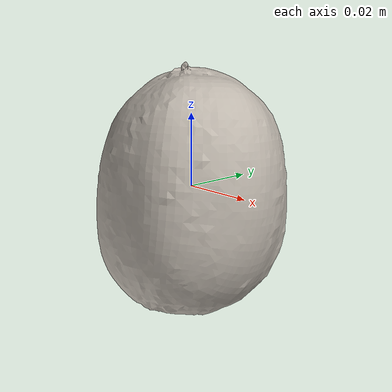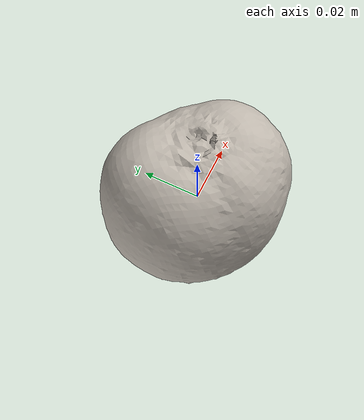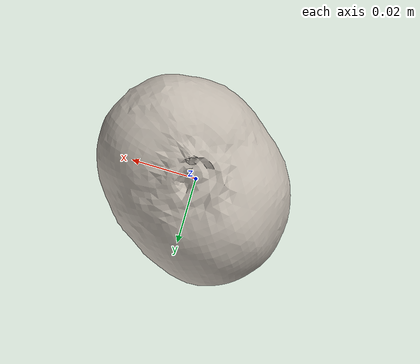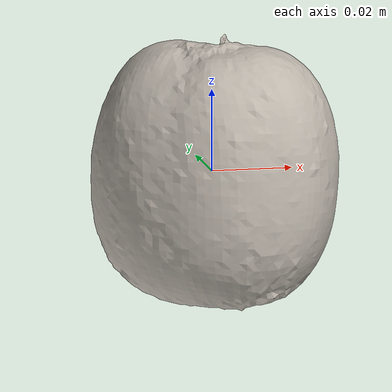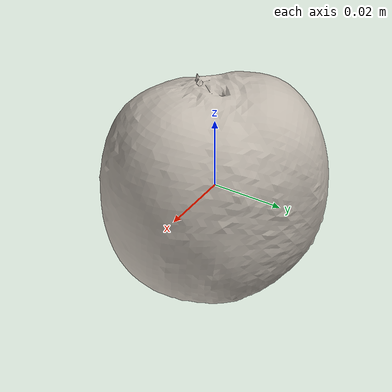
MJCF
<mujoco model="kiwi_9">
  <asset>
    <mesh file="visual/model_normalized_0.obj" name="model_normalized_0_vis" scale="0.0675 0.0675 0.0675" refquat="0.9238795325112866 0.0 0.0 -0.3826834323650897"/>
    <mesh file="collision/model_normalized_collision_22.obj" name="model_normalized_collision_22._coll" scale="0.0675 0.0675 0.0675" refquat="0.9238795325112866 0.0 0.0 -0.3826834323650897"/>
    <mesh file="collision/model_normalized_collision_23.obj" name="model_normalized_collision_23._coll" scale="0.0675 0.0675 0.0675" refquat="0.9238795325112866 0.0 0.0 -0.3826834323650897"/>
    <mesh file="collision/model_normalized_collision_21.obj" name="model_normalized_collision_21._coll" scale="0.0675 0.0675 0.0675" refquat="0.9238795325112866 0.0 0.0 -0.3826834323650897"/>
    <mesh file="collision/model_normalized_collision_20.obj" name="model_normalized_collision_20._coll" scale="0.0675 0.0675 0.0675" refquat="0.9238795325112866 0.0 0.0 -0.3826834323650897"/>
    <mesh file="collision/model_normalized_collision_24.obj" name="model_normalized_collision_24._coll" scale="0.0675 0.0675 0.0675" refquat="0.9238795325112866 0.0 0.0 -0.3826834323650897"/>
    <mesh file="collision/model_normalized_collision_30.obj" name="model_normalized_collision_30._coll" scale="0.0675 0.0675 0.0675" refquat="0.9238795325112866 0.0 0.0 -0.3826834323650897"/>
    <mesh file="collision/model_normalized_collision_18.obj" name="model_normalized_collision_18._coll" scale="0.0675 0.0675 0.0675" refquat="0.9238795325112866 0.0 0.0 -0.3826834323650897"/>
    <mesh file="collision/model_normalized_collision_19.obj" name="model_normalized_collision_19._coll" scale="0.0675 0.0675 0.0675" refquat="0.9238795325112866 0.0 0.0 -0.3826834323650897"/>
    <mesh file="collision/model_normalized_collision_31.obj" name="model_normalized_collision_31._coll" scale="0.0675 0.0675 0.0675" refquat="0.9238795325112866 0.0 0.0 -0.3826834323650897"/>
    <mesh file="collision/model_normalized_collision_25.obj" name="model_normalized_collision_25._coll" scale="0.0675 0.0675 0.0675" refquat="0.9238795325112866 0.0 0.0 -0.3826834323650897"/>
    <mesh file="collision/model_normalized_collision_27.obj" name="model_normalized_collision_27._coll" scale="0.0675 0.0675 0.0675" refquat="0.9238795325112866 0.0 0.0 -0.3826834323650897"/>
    <mesh file="collision/model_normalized_collision_26.obj" name="model_normalized_collision_26._coll" scale="0.0675 0.0675 0.0675" refquat="0.9238795325112866 0.0 0.0 -0.3826834323650897"/>
    <mesh file="collision/model_normalized_collision_9.obj" name="model_normalized_collision_9._coll" scale="0.0675 0.0675 0.0675" refquat="0.9238795325112866 0.0 0.0 -0.3826834323650897"/>
    <mesh file="collision/model_normalized_collision_8.obj" name="model_normalized_collision_8._coll" scale="0.0675 0.0675 0.0675" refquat="0.9238795325112866 0.0 0.0 -0.3826834323650897"/>
    <mesh file="collision/model_normalized_collision_6.obj" name="model_normalized_collision_6._coll" scale="0.0675 0.0675 0.0675" refquat="0.9238795325112866 0.0 0.0 -0.3826834323650897"/>
    <mesh file="collision/model_normalized_collision_7.obj" name="model_normalized_collision_7._coll" scale="0.0675 0.0675 0.0675" refquat="0.9238795325112866 0.0 0.0 -0.3826834323650897"/>
    <mesh file="collision/model_normalized_collision_5.obj" name="model_normalized_collision_5._coll" scale="0.0675 0.0675 0.0675" refquat="0.9238795325112866 0.0 0.0 -0.3826834323650897"/>
    <mesh file="collision/model_normalized_collision_4.obj" name="model_normalized_collision_4._coll" scale="0.0675 0.0675 0.0675" refquat="0.9238795325112866 0.0 0.0 -0.3826834323650897"/>
    <mesh file="collision/model_normalized_collision_0.obj" name="model_normalized_collision_0._coll" scale="0.0675 0.0675 0.0675" refquat="0.9238795325112866 0.0 0.0 -0.3826834323650897"/>
    <mesh file="collision/model_normalized_collision_1.obj" name="model_normalized_collision_1._coll" scale="0.0675 0.0675 0.0675" refquat="0.9238795325112866 0.0 0.0 -0.3826834323650897"/>
    <mesh file="collision/model_normalized_collision_3.obj" name="model_normalized_collision_3._coll" scale="0.0675 0.0675 0.0675" refquat="0.9238795325112866 0.0 0.0 -0.3826834323650897"/>
    <mesh file="collision/model_normalized_collision_2.obj" name="model_normalized_collision_2._coll" scale="0.0675 0.0675 0.0675" refquat="0.9238795325112866 0.0 0.0 -0.3826834323650897"/>
    <mesh file="collision/model_normalized_collision_17.obj" name="model_normalized_collision_17._coll" scale="0.0675 0.0675 0.0675" refquat="0.9238795325112866 0.0 0.0 -0.3826834323650897"/>
    <mesh file="collision/model_normalized_collision_16.obj" name="model_normalized_collision_16._coll" scale="0.0675 0.0675 0.0675" refquat="0.9238795325112866 0.0 0.0 -0.3826834323650897"/>
    <mesh file="collision/model_normalized_collision_28.obj" name="model_normalized_collision_28._coll" scale="0.0675 0.0675 0.0675" refquat="0.9238795325112866 0.0 0.0 -0.3826834323650897"/>
    <mesh file="collision/model_normalized_collision_14.obj" name="model_normalized_collision_14._coll" scale="0.0675 0.0675 0.0675" refquat="0.9238795325112866 0.0 0.0 -0.3826834323650897"/>
    <mesh file="collision/model_normalized_collision_15.obj" name="model_normalized_collision_15._coll" scale="0.0675 0.0675 0.0675" refquat="0.9238795325112866 0.0 0.0 -0.3826834323650897"/>
    <mesh file="collision/model_normalized_collision_29.obj" name="model_normalized_collision_29._coll" scale="0.0675 0.0675 0.0675" refquat="0.9238795325112866 0.0 0.0 -0.3826834323650897"/>
    <mesh file="collision/model_normalized_collision_11.obj" name="model_normalized_collision_11._coll" scale="0.0675 0.0675 0.0675" refquat="0.9238795325112866 0.0 0.0 -0.3826834323650897"/>
    <mesh file="collision/model_normalized_collision_10.obj" name="model_normalized_collision_10._coll" scale="0.0675 0.0675 0.0675" refquat="0.9238795325112866 0.0 0.0 -0.3826834323650897"/>
    <mesh file="collision/model_normalized_collision_12.obj" name="model_normalized_collision_12._coll" scale="0.0675 0.0675 0.0675" refquat="0.9238795325112866 0.0 0.0 -0.3826834323650897"/>
    <mesh file="collision/model_normalized_collision_13.obj" name="model_normalized_collision_13._coll" scale="0.0675 0.0675 0.0675" refquat="0.9238795325112866 0.0 0.0 -0.3826834323650897"/>
    <texture type="2d" name="image0" file="visual/image0.png"/>
    <material name="texture" texture="image0" specular="0.5" shininess="0.0"/>
  </asset>
  <worldbody>
  <body>
      <body name="object">
        <geom solimp="0.998 0.998 0.001" solref="0.001 1" density="100" friction="0.95 0.3 0.1" type="mesh" mesh="model_normalized_0_vis" conaffinity="0" contype="0" group="1" material="texture"/>
        <geom solimp="0.998 0.998 0.001" solref="0.001 1" density="100" friction="0.95 0.3 0.1" type="mesh" mesh="model_normalized_collision_22._coll" group="0" rgba="0.8 0.8 0.8 0.0"/>
        <geom solimp="0.998 0.998 0.001" solref="0.001 1" density="100" friction="0.95 0.3 0.1" type="mesh" mesh="model_normalized_collision_23._coll" group="0" rgba="0.8 0.8 0.8 0.0"/>
        <geom solimp="0.998 0.998 0.001" solref="0.001 1" density="100" friction="0.95 0.3 0.1" type="mesh" mesh="model_normalized_collision_21._coll" group="0" rgba="0.8 0.8 0.8 0.0"/>
        <geom solimp="0.998 0.998 0.001" solref="0.001 1" density="100" friction="0.95 0.3 0.1" type="mesh" mesh="model_normalized_collision_20._coll" group="0" rgba="0.8 0.8 0.8 0.0"/>
        <geom solimp="0.998 0.998 0.001" solref="0.001 1" density="100" friction="0.95 0.3 0.1" type="mesh" mesh="model_normalized_collision_24._coll" group="0" rgba="0.8 0.8 0.8 0.0"/>
        <geom solimp="0.998 0.998 0.001" solref="0.001 1" density="100" friction="0.95 0.3 0.1" type="mesh" mesh="model_normalized_collision_30._coll" group="0" rgba="0.8 0.8 0.8 0.0"/>
        <geom solimp="0.998 0.998 0.001" solref="0.001 1" density="100" friction="0.95 0.3 0.1" type="mesh" mesh="model_normalized_collision_18._coll" group="0" rgba="0.8 0.8 0.8 0.0"/>
        <geom solimp="0.998 0.998 0.001" solref="0.001 1" density="100" friction="0.95 0.3 0.1" type="mesh" mesh="model_normalized_collision_19._coll" group="0" rgba="0.8 0.8 0.8 0.0"/>
        <geom solimp="0.998 0.998 0.001" solref="0.001 1" density="100" friction="0.95 0.3 0.1" type="mesh" mesh="model_normalized_collision_31._coll" group="0" rgba="0.8 0.8 0.8 0.0"/>
        <geom solimp="0.998 0.998 0.001" solref="0.001 1" density="100" friction="0.95 0.3 0.1" type="mesh" mesh="model_normalized_collision_25._coll" group="0" rgba="0.8 0.8 0.8 0.0"/>
        <geom solimp="0.998 0.998 0.001" solref="0.001 1" density="100" friction="0.95 0.3 0.1" type="mesh" mesh="model_normalized_collision_27._coll" group="0" rgba="0.8 0.8 0.8 0.0"/>
        <geom solimp="0.998 0.998 0.001" solref="0.001 1" density="100" friction="0.95 0.3 0.1" type="mesh" mesh="model_normalized_collision_26._coll" group="0" rgba="0.8 0.8 0.8 0.0"/>
        <geom solimp="0.998 0.998 0.001" solref="0.001 1" density="100" friction="0.95 0.3 0.1" type="mesh" mesh="model_normalized_collision_9._coll" group="0" rgba="0.8 0.8 0.8 0.0"/>
        <geom solimp="0.998 0.998 0.001" solref="0.001 1" density="100" friction="0.95 0.3 0.1" type="mesh" mesh="model_normalized_collision_8._coll" group="0" rgba="0.8 0.8 0.8 0.0"/>
        <geom solimp="0.998 0.998 0.001" solref="0.001 1" density="100" friction="0.95 0.3 0.1" type="mesh" mesh="model_normalized_collision_6._coll" group="0" rgba="0.8 0.8 0.8 0.0"/>
        <geom solimp="0.998 0.998 0.001" solref="0.001 1" density="100" friction="0.95 0.3 0.1" type="mesh" mesh="model_normalized_collision_7._coll" group="0" rgba="0.8 0.8 0.8 0.0"/>
        <geom solimp="0.998 0.998 0.001" solref="0.001 1" density="100" friction="0.95 0.3 0.1" type="mesh" mesh="model_normalized_collision_5._coll" group="0" rgba="0.8 0.8 0.8 0.0"/>
        <geom solimp="0.998 0.998 0.001" solref="0.001 1" density="100" friction="0.95 0.3 0.1" type="mesh" mesh="model_normalized_collision_4._coll" group="0" rgba="0.8 0.8 0.8 0.0"/>
        <geom solimp="0.998 0.998 0.001" solref="0.001 1" density="100" friction="0.95 0.3 0.1" type="mesh" mesh="model_normalized_collision_0._coll" group="0" rgba="0.8 0.8 0.8 0.0"/>
        <geom solimp="0.998 0.998 0.001" solref="0.001 1" density="100" friction="0.95 0.3 0.1" type="mesh" mesh="model_normalized_collision_1._coll" group="0" rgba="0.8 0.8 0.8 0.0"/>
        <geom solimp="0.998 0.998 0.001" solref="0.001 1" density="100" friction="0.95 0.3 0.1" type="mesh" mesh="model_normalized_collision_3._coll" group="0" rgba="0.8 0.8 0.8 0.0"/>
        <geom solimp="0.998 0.998 0.001" solref="0.001 1" density="100" friction="0.95 0.3 0.1" type="mesh" mesh="model_normalized_collision_2._coll" group="0" rgba="0.8 0.8 0.8 0.0"/>
        <geom solimp="0.998 0.998 0.001" solref="0.001 1" density="100" friction="0.95 0.3 0.1" type="mesh" mesh="model_normalized_collision_17._coll" group="0" rgba="0.8 0.8 0.8 0.0"/>
        <geom solimp="0.998 0.998 0.001" solref="0.001 1" density="100" friction="0.95 0.3 0.1" type="mesh" mesh="model_normalized_collision_16._coll" group="0" rgba="0.8 0.8 0.8 0.0"/>
        <geom solimp="0.998 0.998 0.001" solref="0.001 1" density="100" friction="0.95 0.3 0.1" type="mesh" mesh="model_normalized_collision_28._coll" group="0" rgba="0.8 0.8 0.8 0.0"/>
        <geom solimp="0.998 0.998 0.001" solref="0.001 1" density="100" friction="0.95 0.3 0.1" type="mesh" mesh="model_normalized_collision_14._coll" group="0" rgba="0.8 0.8 0.8 0.0"/>
        <geom solimp="0.998 0.998 0.001" solref="0.001 1" density="100" friction="0.95 0.3 0.1" type="mesh" mesh="model_normalized_collision_15._coll" group="0" rgba="0.8 0.8 0.8 0.0"/>
        <geom solimp="0.998 0.998 0.001" solref="0.001 1" density="100" friction="0.95 0.3 0.1" type="mesh" mesh="model_normalized_collision_29._coll" group="0" rgba="0.8 0.8 0.8 0.0"/>
        <geom solimp="0.998 0.998 0.001" solref="0.001 1" density="100" friction="0.95 0.3 0.1" type="mesh" mesh="model_normalized_collision_11._coll" group="0" rgba="0.8 0.8 0.8 0.0"/>
        <geom solimp="0.998 0.998 0.001" solref="0.001 1" density="100" friction="0.95 0.3 0.1" type="mesh" mesh="model_normalized_collision_10._coll" group="0" rgba="0.8 0.8 0.8 0.0"/>
        <geom solimp="0.998 0.998 0.001" solref="0.001 1" density="100" friction="0.95 0.3 0.1" type="mesh" mesh="model_normalized_collision_12._coll" group="0" rgba="0.8 0.8 0.8 0.0"/>
        <geom solimp="0.998 0.998 0.001" solref="0.001 1" density="100" friction="0.95 0.3 0.1" type="mesh" mesh="model_normalized_collision_13._coll" group="0" rgba="0.8 0.8 0.8 0.0"/>
      </body>
      <site rgba="0 0 0 0" size="0.005" pos="-0.00023977250358817587 -0.0015058738256549862 -0.030351908799999997" name="bottom_site"/>
      <site rgba="0 0 0 0" size="0.005" pos="-0.00023977250358817587 -0.0015058738256549862 0.029786151999999996" name="top_site"/>
      <site rgba="0 0 0 0" size="0.005" pos="0.03188160185315213 0.041903319471171846 -0.0002828783999999995" name="horizontal_radius_site"/>
    </body>
    </worldbody>
</mujoco>
